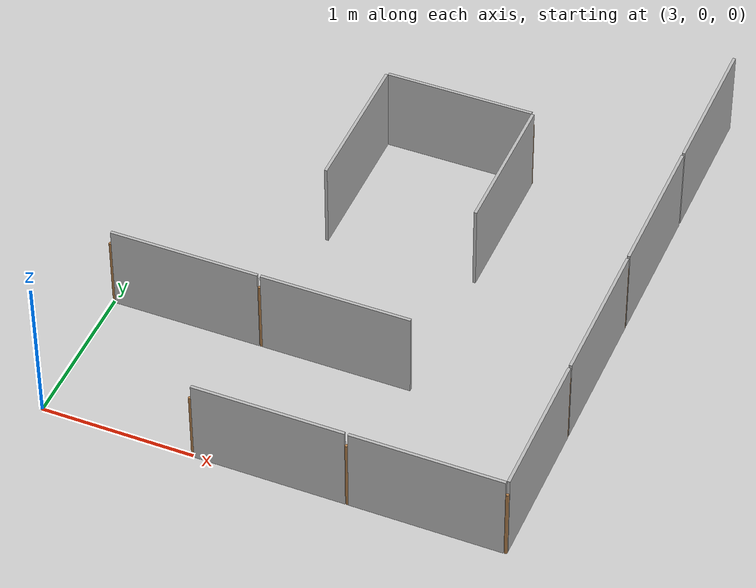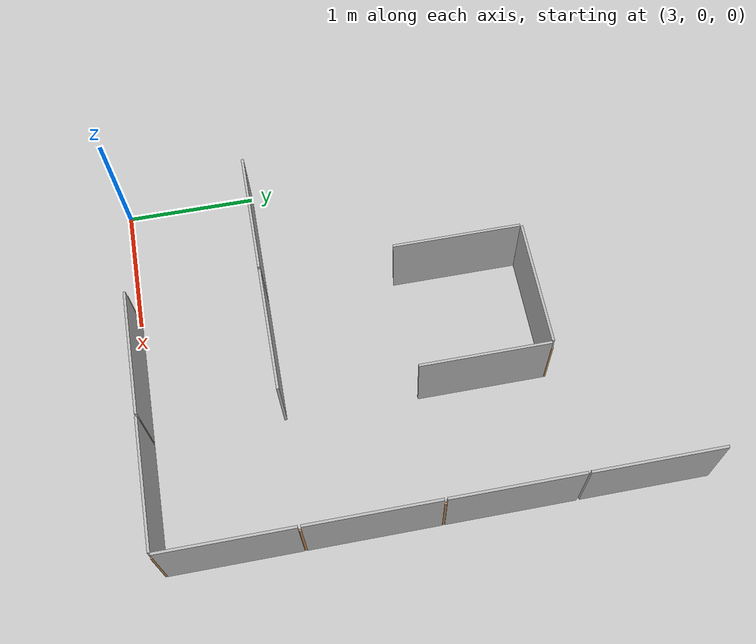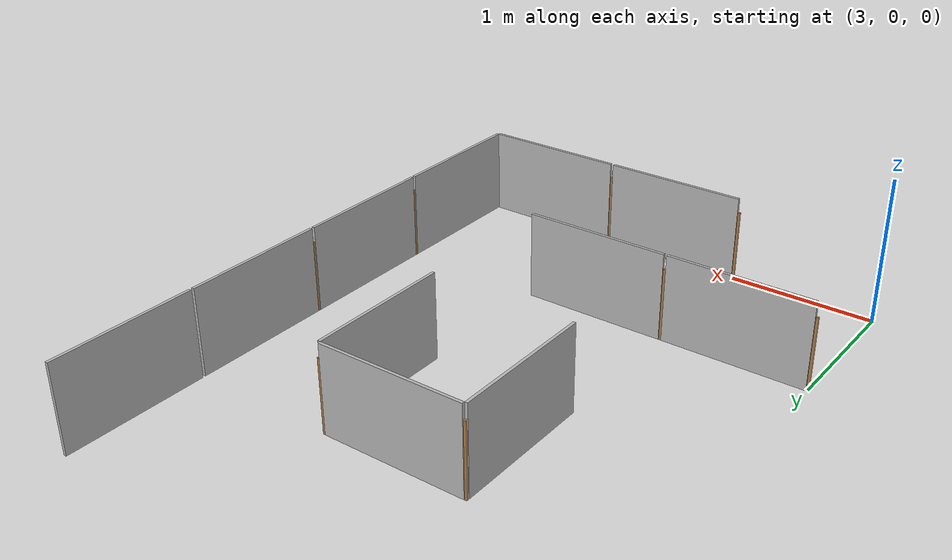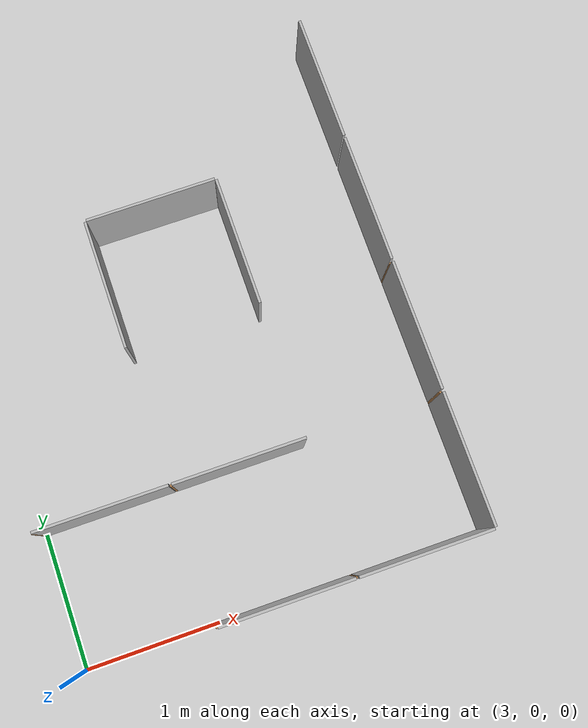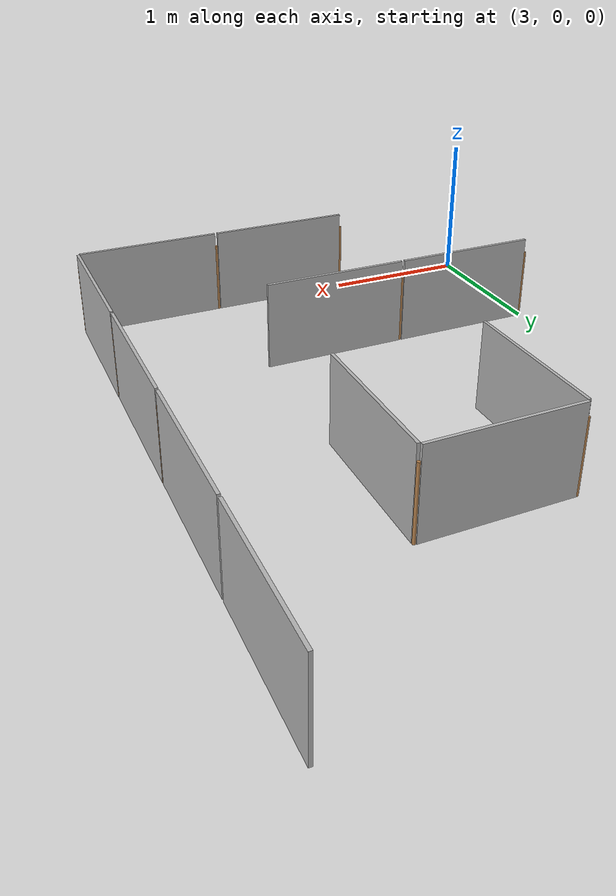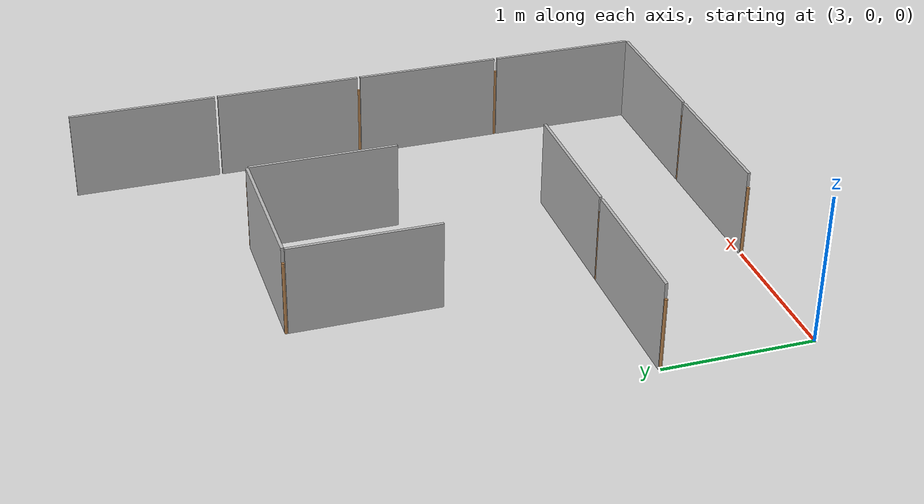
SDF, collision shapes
<sdf version="1.7">
 <model name="maze_3_6x6">
  <link name="plywood_panel_4_0_b::main">
   <pose>4 0 0 0 -0 1.571</pose>
   <visual name="visual">
    <pose>0.01 -0.01 0 3.14159 -1.57059 3.14159</pose>
    <geometry><mesh><scale>1 1 1</scale><uri>model://plywood_panel/meshes/plywood.dae</uri></mesh></geometry>
    <material><shader type="pixel"/></material>
   </visual>
   <collision name="collision">
    <pose>0 -0.5 0.3 -1.571 -0 -1.571</pose>
    <geometry><box><size>0.98 0.6 0.02</size></box></geometry>
    <surface>
     <friction>
      <ode><mu>1</mu><mu2>1</mu2><fdir1>0 0 0</fdir1><slip1>0</slip1><slip2>0</slip2></ode>
      <torsional>
       <coefficient>1</coefficient>
       <patch_radius>0</patch_radius>
       <surface_radius>0</surface_radius>
       <use_patch_radius>1</use_patch_radius>
       <ode><slip>0</slip></ode>
      </torsional>
     </friction>
     <bounce><restitution_coefficient>0</restitution_coefficient><threshold>1e+06</threshold></bounce>
     <contact>
      <collide_without_contact>0</collide_without_contact>
      <collide_without_contact_bitmask>1</collide_without_contact_bitmask>
      <collide_bitmask>1</collide_bitmask>
      <ode>
       <soft_cfm>0</soft_cfm>
       <soft_erp>0.2</soft_erp>
       <kp>1e+13</kp>
       <kd>1</kd>
       <max_vel>0.01</max_vel>
       <min_depth>0</min_depth>
      </ode>
      <bullet>
       <split_impulse>1</split_impulse>
       <split_impulse_penetration_threshold>-0.01</split_impulse_penetration_threshold>
       <soft_cfm>0</soft_cfm>
       <soft_erp>0.2</soft_erp>
       <kp>1e+13</kp>
       <kd>1</kd>
      </bullet>
     </contact>
    </surface>
   </collision>
  </link>
  <link name="plywood_panel_4_1_c::main">
   <pose>4 1 0 0 0 -1.5708</pose>
   <visual name="visual">
    <pose>0.01 -0.01 0 3.14159 -1.57059 3.14159</pose>
    <geometry><mesh><scale>1 1 1</scale><uri>model://plywood_panel/meshes/plywood.dae</uri></mesh></geometry>
    <material><shader type="pixel"/></material>
   </visual>
   <collision name="collision">
    <pose>0 -0.5 0.3 -1.571 -0 -1.571</pose>
    <geometry><box><size>0.98 0.6 0.02</size></box></geometry>
    <surface>
     <friction>
      <ode><mu>1</mu><mu2>1</mu2><fdir1>0 0 0</fdir1><slip1>0</slip1><slip2>0</slip2></ode>
      <torsional>
       <coefficient>1</coefficient>
       <patch_radius>0</patch_radius>
       <surface_radius>0</surface_radius>
       <use_patch_radius>1</use_patch_radius>
       <ode><slip>0</slip></ode>
      </torsional>
     </friction>
     <bounce><restitution_coefficient>0</restitution_coefficient><threshold>1e+06</threshold></bounce>
     <contact>
      <collide_without_contact>0</collide_without_contact>
      <collide_without_contact_bitmask>1</collide_without_contact_bitmask>
      <collide_bitmask>1</collide_bitmask>
      <ode>
       <soft_cfm>0</soft_cfm>
       <soft_erp>0.2</soft_erp>
       <kp>1e+13</kp>
       <kd>1</kd>
       <max_vel>0.01</max_vel>
       <min_depth>0</min_depth>
      </ode>
      <bullet>
       <split_impulse>1</split_impulse>
       <split_impulse_penetration_threshold>-0.01</split_impulse_penetration_threshold>
       <soft_cfm>0</soft_cfm>
       <soft_erp>0.2</soft_erp>
       <kp>1e+13</kp>
       <kd>1</kd>
      </bullet>
     </contact>
    </surface>
   </collision>
  </link>
  <link name="plywood_panel_4_3_a::main">
   <pose>4 3 0 0 -0 0</pose>
   <visual name="visual">
    <pose>0.01 -0.01 0 3.14159 -1.57059 3.14159</pose>
    <geometry><mesh><scale>1 1 1</scale><uri>model://plywood_panel/meshes/plywood.dae</uri></mesh></geometry>
    <material><shader type="pixel"/></material>
   </visual>
   <collision name="collision">
    <pose>0 -0.5 0.3 -1.571 -0 -1.571</pose>
    <geometry><box><size>0.98 0.6 0.02</size></box></geometry>
    <surface>
     <friction>
      <ode><mu>1</mu><mu2>1</mu2><fdir1>0 0 0</fdir1><slip1>0</slip1><slip2>0</slip2></ode>
      <torsional>
       <coefficient>1</coefficient>
       <patch_radius>0</patch_radius>
       <surface_radius>0</surface_radius>
       <use_patch_radius>1</use_patch_radius>
       <ode><slip>0</slip></ode>
      </torsional>
     </friction>
     <bounce><restitution_coefficient>0</restitution_coefficient><threshold>1e+06</threshold></bounce>
     <contact>
      <collide_without_contact>0</collide_without_contact>
      <collide_without_contact_bitmask>1</collide_without_contact_bitmask>
      <collide_bitmask>1</collide_bitmask>
      <ode>
       <soft_cfm>0</soft_cfm>
       <soft_erp>0.2</soft_erp>
       <kp>1e+13</kp>
       <kd>1</kd>
       <max_vel>0.01</max_vel>
       <min_depth>0</min_depth>
      </ode>
      <bullet>
       <split_impulse>1</split_impulse>
       <split_impulse_penetration_threshold>-0.01</split_impulse_penetration_threshold>
       <soft_cfm>0</soft_cfm>
       <soft_erp>0.2</soft_erp>
       <kp>1e+13</kp>
       <kd>1</kd>
      </bullet>
     </contact>
    </surface>
   </collision>
  </link>
  <link name="plywood_panel_5_0_b::main">
   <pose>5 0 0 0 -0 1.571</pose>
   <visual name="visual">
    <pose>0.01 -0.01 0 3.14159 -1.57059 3.14159</pose>
    <geometry><mesh><scale>1 1 1</scale><uri>model://plywood_panel/meshes/plywood.dae</uri></mesh></geometry>
    <material><shader type="pixel"/></material>
   </visual>
   <collision name="collision">
    <pose>0 -0.5 0.3 -1.571 -0 -1.571</pose>
    <geometry><box><size>0.98 0.6 0.02</size></box></geometry>
    <surface>
     <friction>
      <ode><mu>1</mu><mu2>1</mu2><fdir1>0 0 0</fdir1><slip1>0</slip1><slip2>0</slip2></ode>
      <torsional>
       <coefficient>1</coefficient>
       <patch_radius>0</patch_radius>
       <surface_radius>0</surface_radius>
       <use_patch_radius>1</use_patch_radius>
       <ode><slip>0</slip></ode>
      </torsional>
     </friction>
     <bounce><restitution_coefficient>0</restitution_coefficient><threshold>1e+06</threshold></bounce>
     <contact>
      <collide_without_contact>0</collide_without_contact>
      <collide_without_contact_bitmask>1</collide_without_contact_bitmask>
      <collide_bitmask>1</collide_bitmask>
      <ode>
       <soft_cfm>0</soft_cfm>
       <soft_erp>0.2</soft_erp>
       <kp>1e+13</kp>
       <kd>1</kd>
       <max_vel>0.01</max_vel>
       <min_depth>0</min_depth>
      </ode>
      <bullet>
       <split_impulse>1</split_impulse>
       <split_impulse_penetration_threshold>-0.01</split_impulse_penetration_threshold>
       <soft_cfm>0</soft_cfm>
       <soft_erp>0.2</soft_erp>
       <kp>1e+13</kp>
       <kd>1</kd>
      </bullet>
     </contact>
    </surface>
   </collision>
  </link>
  <link name="plywood_panel_5_1_c::main">
   <pose>5 1 0 0 0 -1.5708</pose>
   <visual name="visual">
    <pose>0.01 -0.01 0 3.14159 -1.57059 3.14159</pose>
    <geometry><mesh><scale>1 1 1</scale><uri>model://plywood_panel/meshes/plywood.dae</uri></mesh></geometry>
    <material><shader type="pixel"/></material>
   </visual>
   <collision name="collision">
    <pose>0 -0.5 0.3 -1.571 -0 -1.571</pose>
    <geometry><box><size>0.98 0.6 0.02</size></box></geometry>
    <surface>
     <friction>
      <ode><mu>1</mu><mu2>1</mu2><fdir1>0 0 0</fdir1><slip1>0</slip1><slip2>0</slip2></ode>
      <torsional>
       <coefficient>1</coefficient>
       <patch_radius>0</patch_radius>
       <surface_radius>0</surface_radius>
       <use_patch_radius>1</use_patch_radius>
       <ode><slip>0</slip></ode>
      </torsional>
     </friction>
     <bounce><restitution_coefficient>0</restitution_coefficient><threshold>1e+06</threshold></bounce>
     <contact>
      <collide_without_contact>0</collide_without_contact>
      <collide_without_contact_bitmask>1</collide_without_contact_bitmask>
      <collide_bitmask>1</collide_bitmask>
      <ode>
       <soft_cfm>0</soft_cfm>
       <soft_erp>0.2</soft_erp>
       <kp>1e+13</kp>
       <kd>1</kd>
       <max_vel>0.01</max_vel>
       <min_depth>0</min_depth>
      </ode>
      <bullet>
       <split_impulse>1</split_impulse>
       <split_impulse_penetration_threshold>-0.01</split_impulse_penetration_threshold>
       <soft_cfm>0</soft_cfm>
       <soft_erp>0.2</soft_erp>
       <kp>1e+13</kp>
       <kd>1</kd>
      </bullet>
     </contact>
    </surface>
   </collision>
  </link>
  <link name="plywood_panel_5_3_a::main">
   <pose>5 3 0 0 -0 0</pose>
   <visual name="visual">
    <pose>0.01 -0.01 0 3.14159 -1.57059 3.14159</pose>
    <geometry><mesh><scale>1 1 1</scale><uri>model://plywood_panel/meshes/plywood.dae</uri></mesh></geometry>
    <material><shader type="pixel"/></material>
   </visual>
   <collision name="collision">
    <pose>0 -0.5 0.3 -1.571 -0 -1.571</pose>
    <geometry><box><size>0.98 0.6 0.02</size></box></geometry>
    <surface>
     <friction>
      <ode><mu>1</mu><mu2>1</mu2><fdir1>0 0 0</fdir1><slip1>0</slip1><slip2>0</slip2></ode>
      <torsional>
       <coefficient>1</coefficient>
       <patch_radius>0</patch_radius>
       <surface_radius>0</surface_radius>
       <use_patch_radius>1</use_patch_radius>
       <ode><slip>0</slip></ode>
      </torsional>
     </friction>
     <bounce><restitution_coefficient>0</restitution_coefficient><threshold>1e+06</threshold></bounce>
     <contact>
      <collide_without_contact>0</collide_without_contact>
      <collide_without_contact_bitmask>1</collide_without_contact_bitmask>
      <collide_bitmask>1</collide_bitmask>
      <ode>
       <soft_cfm>0</soft_cfm>
       <soft_erp>0.2</soft_erp>
       <kp>1e+13</kp>
       <kd>1</kd>
       <max_vel>0.01</max_vel>
       <min_depth>0</min_depth>
      </ode>
      <bullet>
       <split_impulse>1</split_impulse>
       <split_impulse_penetration_threshold>-0.01</split_impulse_penetration_threshold>
       <soft_cfm>0</soft_cfm>
       <soft_erp>0.2</soft_erp>
       <kp>1e+13</kp>
       <kd>1</kd>
      </bullet>
     </contact>
    </surface>
   </collision>
  </link>
  <link name="plywood_panel_5_3_c::main">
   <pose>5 3 0 0 0 -1.5708</pose>
   <visual name="visual">
    <pose>0.01 -0.01 0 3.14159 -1.57059 3.14159</pose>
    <geometry><mesh><scale>1 1 1</scale><uri>model://plywood_panel/meshes/plywood.dae</uri></mesh></geometry>
    <material><shader type="pixel"/></material>
   </visual>
   <collision name="collision">
    <pose>0 -0.5 0.3 -1.571 -0 -1.571</pose>
    <geometry><box><size>0.98 0.6 0.02</size></box></geometry>
    <surface>
     <friction>
      <ode><mu>1</mu><mu2>1</mu2><fdir1>0 0 0</fdir1><slip1>0</slip1><slip2>0</slip2></ode>
      <torsional>
       <coefficient>1</coefficient>
       <patch_radius>0</patch_radius>
       <surface_radius>0</surface_radius>
       <use_patch_radius>1</use_patch_radius>
       <ode><slip>0</slip></ode>
      </torsional>
     </friction>
     <bounce><restitution_coefficient>0</restitution_coefficient><threshold>1e+06</threshold></bounce>
     <contact>
      <collide_without_contact>0</collide_without_contact>
      <collide_without_contact_bitmask>1</collide_without_contact_bitmask>
      <collide_bitmask>1</collide_bitmask>
      <ode>
       <soft_cfm>0</soft_cfm>
       <soft_erp>0.2</soft_erp>
       <kp>1e+13</kp>
       <kd>1</kd>
       <max_vel>0.01</max_vel>
       <min_depth>0</min_depth>
      </ode>
      <bullet>
       <split_impulse>1</split_impulse>
       <split_impulse_penetration_threshold>-0.01</split_impulse_penetration_threshold>
       <soft_cfm>0</soft_cfm>
       <soft_erp>0.2</soft_erp>
       <kp>1e+13</kp>
       <kd>1</kd>
      </bullet>
     </contact>
    </surface>
   </collision>
  </link>
  <link name="plywood_panel_6_0_a::main">
   <pose>6 0 0 0 -0 3.14159</pose>
   <visual name="visual">
    <pose>0.01 -0.01 0 3.14159 -1.57059 3.14159</pose>
    <geometry><mesh><scale>1 1 1</scale><uri>model://plywood_panel/meshes/plywood.dae</uri></mesh></geometry>
    <material><shader type="pixel"/></material>
   </visual>
   <collision name="collision">
    <pose>0 -0.5 0.3 -1.571 -0 -1.571</pose>
    <geometry><box><size>0.98 0.6 0.02</size></box></geometry>
    <surface>
     <friction>
      <ode><mu>1</mu><mu2>1</mu2><fdir1>0 0 0</fdir1><slip1>0</slip1><slip2>0</slip2></ode>
      <torsional>
       <coefficient>1</coefficient>
       <patch_radius>0</patch_radius>
       <surface_radius>0</surface_radius>
       <use_patch_radius>1</use_patch_radius>
       <ode><slip>0</slip></ode>
      </torsional>
     </friction>
     <bounce><restitution_coefficient>0</restitution_coefficient><threshold>1e+06</threshold></bounce>
     <contact>
      <collide_without_contact>0</collide_without_contact>
      <collide_without_contact_bitmask>1</collide_without_contact_bitmask>
      <collide_bitmask>1</collide_bitmask>
      <ode>
       <soft_cfm>0</soft_cfm>
       <soft_erp>0.2</soft_erp>
       <kp>1e+13</kp>
       <kd>1</kd>
       <max_vel>0.01</max_vel>
       <min_depth>0</min_depth>
      </ode>
      <bullet>
       <split_impulse>1</split_impulse>
       <split_impulse_penetration_threshold>-0.01</split_impulse_penetration_threshold>
       <soft_cfm>0</soft_cfm>
       <soft_erp>0.2</soft_erp>
       <kp>1e+13</kp>
       <kd>1</kd>
      </bullet>
     </contact>
    </surface>
   </collision>
  </link>
  <link name="plywood_panel_6_1_a::main">
   <pose>6 1 0 0 -0 3.14159</pose>
   <visual name="visual">
    <pose>0.01 -0.01 0 3.14159 -1.57059 3.14159</pose>
    <geometry><mesh><scale>1 1 1</scale><uri>model://plywood_panel/meshes/plywood.dae</uri></mesh></geometry>
    <material><shader type="pixel"/></material>
   </visual>
   <collision name="collision">
    <pose>0 -0.5 0.3 -1.571 -0 -1.571</pose>
    <geometry><box><size>0.98 0.6 0.02</size></box></geometry>
    <surface>
     <friction>
      <ode><mu>1</mu><mu2>1</mu2><fdir1>0 0 0</fdir1><slip1>0</slip1><slip2>0</slip2></ode>
      <torsional>
       <coefficient>1</coefficient>
       <patch_radius>0</patch_radius>
       <surface_radius>0</surface_radius>
       <use_patch_radius>1</use_patch_radius>
       <ode><slip>0</slip></ode>
      </torsional>
     </friction>
     <bounce><restitution_coefficient>0</restitution_coefficient><threshold>1e+06</threshold></bounce>
     <contact>
      <collide_without_contact>0</collide_without_contact>
      <collide_without_contact_bitmask>1</collide_without_contact_bitmask>
      <collide_bitmask>1</collide_bitmask>
      <ode>
       <soft_cfm>0</soft_cfm>
       <soft_erp>0.2</soft_erp>
       <kp>1e+13</kp>
       <kd>1</kd>
       <max_vel>0.01</max_vel>
       <min_depth>0</min_depth>
      </ode>
      <bullet>
       <split_impulse>1</split_impulse>
       <split_impulse_penetration_threshold>-0.01</split_impulse_penetration_threshold>
       <soft_cfm>0</soft_cfm>
       <soft_erp>0.2</soft_erp>
       <kp>1e+13</kp>
       <kd>1</kd>
      </bullet>
     </contact>
    </surface>
   </collision>
  </link>
  <link name="plywood_panel_6_2_a::main">
   <pose>6 2 0 0 -0 3.14159</pose>
   <visual name="visual">
    <pose>0.01 -0.01 0 3.14159 -1.57059 3.14159</pose>
    <geometry><mesh><scale>1 1 1</scale><uri>model://plywood_panel/meshes/plywood.dae</uri></mesh></geometry>
    <material><shader type="pixel"/></material>
   </visual>
   <collision name="collision">
    <pose>0 -0.5 0.3 -1.571 -0 -1.571</pose>
    <geometry><box><size>0.98 0.6 0.02</size></box></geometry>
    <surface>
     <friction>
      <ode><mu>1</mu><mu2>1</mu2><fdir1>0 0 0</fdir1><slip1>0</slip1><slip2>0</slip2></ode>
      <torsional>
       <coefficient>1</coefficient>
       <patch_radius>0</patch_radius>
       <surface_radius>0</surface_radius>
       <use_patch_radius>1</use_patch_radius>
       <ode><slip>0</slip></ode>
      </torsional>
     </friction>
     <bounce><restitution_coefficient>0</restitution_coefficient><threshold>1e+06</threshold></bounce>
     <contact>
      <collide_without_contact>0</collide_without_contact>
      <collide_without_contact_bitmask>1</collide_without_contact_bitmask>
      <collide_bitmask>1</collide_bitmask>
      <ode>
       <soft_cfm>0</soft_cfm>
       <soft_erp>0.2</soft_erp>
       <kp>1e+13</kp>
       <kd>1</kd>
       <max_vel>0.01</max_vel>
       <min_depth>0</min_depth>
      </ode>
      <bullet>
       <split_impulse>1</split_impulse>
       <split_impulse_penetration_threshold>-0.01</split_impulse_penetration_threshold>
       <soft_cfm>0</soft_cfm>
       <soft_erp>0.2</soft_erp>
       <kp>1e+13</kp>
       <kd>1</kd>
      </bullet>
     </contact>
    </surface>
   </collision>
  </link>
  <link name="plywood_panel_6_3_a::main">
   <pose>6 3 0 0 -0 3.14159</pose>
   <visual name="visual">
    <pose>0.01 -0.01 0 3.14159 -1.57059 3.14159</pose>
    <geometry><mesh><scale>1 1 1</scale><uri>model://plywood_panel/meshes/plywood.dae</uri></mesh></geometry>
    <material><shader type="pixel"/></material>
   </visual>
   <collision name="collision">
    <pose>0 -0.5 0.3 -1.571 -0 -1.571</pose>
    <geometry><box><size>0.98 0.6 0.02</size></box></geometry>
    <surface>
     <friction>
      <ode><mu>1</mu><mu2>1</mu2><fdir1>0 0 0</fdir1><slip1>0</slip1><slip2>0</slip2></ode>
      <torsional>
       <coefficient>1</coefficient>
       <patch_radius>0</patch_radius>
       <surface_radius>0</surface_radius>
       <use_patch_radius>1</use_patch_radius>
       <ode><slip>0</slip></ode>
      </torsional>
     </friction>
     <bounce><restitution_coefficient>0</restitution_coefficient><threshold>1e+06</threshold></bounce>
     <contact>
      <collide_without_contact>0</collide_without_contact>
      <collide_without_contact_bitmask>1</collide_without_contact_bitmask>
      <collide_bitmask>1</collide_bitmask>
      <ode>
       <soft_cfm>0</soft_cfm>
       <soft_erp>0.2</soft_erp>
       <kp>1e+13</kp>
       <kd>1</kd>
       <max_vel>0.01</max_vel>
       <min_depth>0</min_depth>
      </ode>
      <bullet>
       <split_impulse>1</split_impulse>
       <split_impulse_penetration_threshold>-0.01</split_impulse_penetration_threshold>
       <soft_cfm>0</soft_cfm>
       <soft_erp>0.2</soft_erp>
       <kp>1e+13</kp>
       <kd>1</kd>
      </bullet>
     </contact>
    </surface>
   </collision>
  </link>
  <link name="wooden_joint_3_0_b::link_0">
   <pose>3 0 0.25 0 -0 0</pose>
   <inertial>
    <mass>0.00215981</mass>
    <inertia>
     <ixx>0.00018028</ixx>
     <ixy>0</ixy>
     <ixz>0</ixz>
     <iyy>0.00018028</iyy>
     <iyz>0</iyz>
     <izz>5.8e-07</izz>
    </inertia>
   </inertial>
   <visual name="visual">
    <geometry><cylinder><radius>0.01</radius><length>0.5</length></cylinder></geometry>
    <material>
     <lighting>1</lighting>
     <script><uri>file://media/materials/scripts/gazebo.material</uri><name>Gazebo/Wood</name></script>
     <shader type="pixel"><normal_map>__default__</normal_map></shader>
     <ambient>0.3 0.3 0.3 1</ambient>
     <diffuse>0.7 0.7 0.7 1</diffuse>
     <specular>0.01 0.01 0.01 1</specular>
     <emissive>0 0 0 1</emissive>
    </material>
   </visual>
   <collision name="collision">
    <geometry><cylinder><radius>0.01</radius><length>0.5</length></cylinder></geometry>
    <surface>
     <friction>
      <ode><mu>1</mu><mu2>1</mu2><fdir1>0 0 0</fdir1><slip1>0</slip1><slip2>0</slip2></ode>
      <torsional>
       <coefficient>1</coefficient>
       <patch_radius>0</patch_radius>
       <surface_radius>0</surface_radius>
       <use_patch_radius>1</use_patch_radius>
       <ode><slip>0</slip></ode>
      </torsional>
     </friction>
     <bounce><restitution_coefficient>0</restitution_coefficient><threshold>1e+06</threshold></bounce>
     <contact>
      <collide_without_contact>0</collide_without_contact>
      <collide_without_contact_bitmask>1</collide_without_contact_bitmask>
      <collide_bitmask>1</collide_bitmask>
      <ode>
       <soft_cfm>0</soft_cfm>
       <soft_erp>0.2</soft_erp>
       <kp>1e+13</kp>
       <kd>1</kd>
       <max_vel>0.01</max_vel>
       <min_depth>0</min_depth>
      </ode>
      <bullet>
       <split_impulse>1</split_impulse>
       <split_impulse_penetration_threshold>-0.01</split_impulse_penetration_threshold>
       <soft_cfm>0</soft_cfm>
       <soft_erp>0.2</soft_erp>
       <kp>1e+13</kp>
       <kd>1</kd>
      </bullet>
     </contact>
    </surface>
   </collision>
  </link>
  <link name="wooden_joint_3_1::link_0">
   <pose>3 1 0.25 0 -0 0</pose>
   <inertial>
    <mass>0.00215981</mass>
    <inertia>
     <ixx>0.00018028</ixx>
     <ixy>0</ixy>
     <ixz>0</ixz>
     <iyy>0.00018028</iyy>
     <iyz>0</iyz>
     <izz>5.8e-07</izz>
    </inertia>
   </inertial>
   <visual name="visual">
    <geometry><cylinder><radius>0.01</radius><length>0.5</length></cylinder></geometry>
    <material>
     <lighting>1</lighting>
     <script><uri>file://media/materials/scripts/gazebo.material</uri><name>Gazebo/Wood</name></script>
     <shader type="pixel"><normal_map>__default__</normal_map></shader>
     <ambient>0.3 0.3 0.3 1</ambient>
     <diffuse>0.7 0.7 0.7 1</diffuse>
     <specular>0.01 0.01 0.01 1</specular>
     <emissive>0 0 0 1</emissive>
    </material>
   </visual>
   <collision name="collision">
    <geometry><cylinder><radius>0.01</radius><length>0.5</length></cylinder></geometry>
    <surface>
     <friction>
      <ode><mu>1</mu><mu2>1</mu2><fdir1>0 0 0</fdir1><slip1>0</slip1><slip2>0</slip2></ode>
      <torsional>
       <coefficient>1</coefficient>
       <patch_radius>0</patch_radius>
       <surface_radius>0</surface_radius>
       <use_patch_radius>1</use_patch_radius>
       <ode><slip>0</slip></ode>
      </torsional>
     </friction>
     <bounce><restitution_coefficient>0</restitution_coefficient><threshold>1e+06</threshold></bounce>
     <contact>
      <collide_without_contact>0</collide_without_contact>
      <collide_without_contact_bitmask>1</collide_without_contact_bitmask>
      <collide_bitmask>1</collide_bitmask>
      <ode>
       <soft_cfm>0</soft_cfm>
       <soft_erp>0.2</soft_erp>
       <kp>1e+13</kp>
       <kd>1</kd>
       <max_vel>0.01</max_vel>
       <min_depth>0</min_depth>
      </ode>
      <bullet>
       <split_impulse>1</split_impulse>
       <split_impulse_penetration_threshold>-0.01</split_impulse_penetration_threshold>
       <soft_cfm>0</soft_cfm>
       <soft_erp>0.2</soft_erp>
       <kp>1e+13</kp>
       <kd>1</kd>
      </bullet>
     </contact>
    </surface>
   </collision>
  </link>
  <link name="wooden_joint_4_0_b::link_0">
   <pose>4 0 0.25 0 -0 0</pose>
   <inertial>
    <mass>0.00215981</mass>
    <inertia>
     <ixx>0.00018028</ixx>
     <ixy>0</ixy>
     <ixz>0</ixz>
     <iyy>0.00018028</iyy>
     <iyz>0</iyz>
     <izz>5.8e-07</izz>
    </inertia>
   </inertial>
   <visual name="visual">
    <geometry><cylinder><radius>0.01</radius><length>0.5</length></cylinder></geometry>
    <material>
     <lighting>1</lighting>
     <script><uri>file://media/materials/scripts/gazebo.material</uri><name>Gazebo/Wood</name></script>
     <shader type="pixel"><normal_map>__default__</normal_map></shader>
     <ambient>0.3 0.3 0.3 1</ambient>
     <diffuse>0.7 0.7 0.7 1</diffuse>
     <specular>0.01 0.01 0.01 1</specular>
     <emissive>0 0 0 1</emissive>
    </material>
   </visual>
   <collision name="collision">
    <geometry><cylinder><radius>0.01</radius><length>0.5</length></cylinder></geometry>
    <surface>
     <friction>
      <ode><mu>1</mu><mu2>1</mu2><fdir1>0 0 0</fdir1><slip1>0</slip1><slip2>0</slip2></ode>
      <torsional>
       <coefficient>1</coefficient>
       <patch_radius>0</patch_radius>
       <surface_radius>0</surface_radius>
       <use_patch_radius>1</use_patch_radius>
       <ode><slip>0</slip></ode>
      </torsional>
     </friction>
     <bounce><restitution_coefficient>0</restitution_coefficient><threshold>1e+06</threshold></bounce>
     <contact>
      <collide_without_contact>0</collide_without_contact>
      <collide_without_contact_bitmask>1</collide_without_contact_bitmask>
      <collide_bitmask>1</collide_bitmask>
      <ode>
       <soft_cfm>0</soft_cfm>
       <soft_erp>0.2</soft_erp>
       <kp>1e+13</kp>
       <kd>1</kd>
       <max_vel>0.01</max_vel>
       <min_depth>0</min_depth>
      </ode>
      <bullet>
       <split_impulse>1</split_impulse>
       <split_impulse_penetration_threshold>-0.01</split_impulse_penetration_threshold>
       <soft_cfm>0</soft_cfm>
       <soft_erp>0.2</soft_erp>
       <kp>1e+13</kp>
       <kd>1</kd>
      </bullet>
     </contact>
    </surface>
   </collision>
  </link>
  <link name="wooden_joint_4_1::link_0">
   <pose>4 1 0.25 0 -0 0</pose>
   <inertial>
    <mass>0.00215981</mass>
    <inertia>
     <ixx>0.00018028</ixx>
     <ixy>0</ixy>
     <ixz>0</ixz>
     <iyy>0.00018028</iyy>
     <iyz>0</iyz>
     <izz>5.8e-07</izz>
    </inertia>
   </inertial>
   <visual name="visual">
    <geometry><cylinder><radius>0.01</radius><length>0.5</length></cylinder></geometry>
    <material>
     <lighting>1</lighting>
     <script><uri>file://media/materials/scripts/gazebo.material</uri><name>Gazebo/Wood</name></script>
     <shader type="pixel"><normal_map>__default__</normal_map></shader>
     <ambient>0.3 0.3 0.3 1</ambient>
     <diffuse>0.7 0.7 0.7 1</diffuse>
     <specular>0.01 0.01 0.01 1</specular>
     <emissive>0 0 0 1</emissive>
    </material>
   </visual>
   <collision name="collision">
    <geometry><cylinder><radius>0.01</radius><length>0.5</length></cylinder></geometry>
    <surface>
     <friction>
      <ode><mu>1</mu><mu2>1</mu2><fdir1>0 0 0</fdir1><slip1>0</slip1><slip2>0</slip2></ode>
      <torsional>
       <coefficient>1</coefficient>
       <patch_radius>0</patch_radius>
       <surface_radius>0</surface_radius>
       <use_patch_radius>1</use_patch_radius>
       <ode><slip>0</slip></ode>
      </torsional>
     </friction>
     <bounce><restitution_coefficient>0</restitution_coefficient><threshold>1e+06</threshold></bounce>
     <contact>
      <collide_without_contact>0</collide_without_contact>
      <collide_without_contact_bitmask>1</collide_without_contact_bitmask>
      <collide_bitmask>1</collide_bitmask>
      <ode>
       <soft_cfm>0</soft_cfm>
       <soft_erp>0.2</soft_erp>
       <kp>1e+13</kp>
       <kd>1</kd>
       <max_vel>0.01</max_vel>
       <min_depth>0</min_depth>
      </ode>
      <bullet>
       <split_impulse>1</split_impulse>
       <split_impulse_penetration_threshold>-0.01</split_impulse_penetration_threshold>
       <soft_cfm>0</soft_cfm>
       <soft_erp>0.2</soft_erp>
       <kp>1e+13</kp>
       <kd>1</kd>
      </bullet>
     </contact>
    </surface>
   </collision>
  </link>
  <link name="wooden_joint_4_3::link_0">
   <pose>4 3 0.25 0 -0 0</pose>
   <inertial>
    <mass>0.00215981</mass>
    <inertia>
     <ixx>0.00018028</ixx>
     <ixy>0</ixy>
     <ixz>0</ixz>
     <iyy>0.00018028</iyy>
     <iyz>0</iyz>
     <izz>5.8e-07</izz>
    </inertia>
   </inertial>
   <visual name="visual">
    <geometry><cylinder><radius>0.01</radius><length>0.5</length></cylinder></geometry>
    <material>
     <lighting>1</lighting>
     <script><uri>file://media/materials/scripts/gazebo.material</uri><name>Gazebo/Wood</name></script>
     <shader type="pixel"><normal_map>__default__</normal_map></shader>
     <ambient>0.3 0.3 0.3 1</ambient>
     <diffuse>0.7 0.7 0.7 1</diffuse>
     <specular>0.01 0.01 0.01 1</specular>
     <emissive>0 0 0 1</emissive>
    </material>
   </visual>
   <collision name="collision">
    <geometry><cylinder><radius>0.01</radius><length>0.5</length></cylinder></geometry>
    <surface>
     <friction>
      <ode><mu>1</mu><mu2>1</mu2><fdir1>0 0 0</fdir1><slip1>0</slip1><slip2>0</slip2></ode>
      <torsional>
       <coefficient>1</coefficient>
       <patch_radius>0</patch_radius>
       <surface_radius>0</surface_radius>
       <use_patch_radius>1</use_patch_radius>
       <ode><slip>0</slip></ode>
      </torsional>
     </friction>
     <bounce><restitution_coefficient>0</restitution_coefficient><threshold>1e+06</threshold></bounce>
     <contact>
      <collide_without_contact>0</collide_without_contact>
      <collide_without_contact_bitmask>1</collide_without_contact_bitmask>
      <collide_bitmask>1</collide_bitmask>
      <ode>
       <soft_cfm>0</soft_cfm>
       <soft_erp>0.2</soft_erp>
       <kp>1e+13</kp>
       <kd>1</kd>
       <max_vel>0.01</max_vel>
       <min_depth>0</min_depth>
      </ode>
      <bullet>
       <split_impulse>1</split_impulse>
       <split_impulse_penetration_threshold>-0.01</split_impulse_penetration_threshold>
       <soft_cfm>0</soft_cfm>
       <soft_erp>0.2</soft_erp>
       <kp>1e+13</kp>
       <kd>1</kd>
      </bullet>
     </contact>
    </surface>
   </collision>
  </link>
  <link name="wooden_joint_5_0_b::link_0">
   <pose>5 0 0.25 0 -0 0</pose>
   <inertial>
    <mass>0.00215981</mass>
    <inertia>
     <ixx>0.00018028</ixx>
     <ixy>0</ixy>
     <ixz>0</ixz>
     <iyy>0.00018028</iyy>
     <iyz>0</iyz>
     <izz>5.8e-07</izz>
    </inertia>
   </inertial>
   <visual name="visual">
    <geometry><cylinder><radius>0.01</radius><length>0.5</length></cylinder></geometry>
    <material>
     <lighting>1</lighting>
     <script><uri>file://media/materials/scripts/gazebo.material</uri><name>Gazebo/Wood</name></script>
     <shader type="pixel"><normal_map>__default__</normal_map></shader>
     <ambient>0.3 0.3 0.3 1</ambient>
     <diffuse>0.7 0.7 0.7 1</diffuse>
     <specular>0.01 0.01 0.01 1</specular>
     <emissive>0 0 0 1</emissive>
    </material>
   </visual>
   <collision name="collision">
    <geometry><cylinder><radius>0.01</radius><length>0.5</length></cylinder></geometry>
    <surface>
     <friction>
      <ode><mu>1</mu><mu2>1</mu2><fdir1>0 0 0</fdir1><slip1>0</slip1><slip2>0</slip2></ode>
      <torsional>
       <coefficient>1</coefficient>
       <patch_radius>0</patch_radius>
       <surface_radius>0</surface_radius>
       <use_patch_radius>1</use_patch_radius>
       <ode><slip>0</slip></ode>
      </torsional>
     </friction>
     <bounce><restitution_coefficient>0</restitution_coefficient><threshold>1e+06</threshold></bounce>
     <contact>
      <collide_without_contact>0</collide_without_contact>
      <collide_without_contact_bitmask>1</collide_without_contact_bitmask>
      <collide_bitmask>1</collide_bitmask>
      <ode>
       <soft_cfm>0</soft_cfm>
       <soft_erp>0.2</soft_erp>
       <kp>1e+13</kp>
       <kd>1</kd>
       <max_vel>0.01</max_vel>
       <min_depth>0</min_depth>
      </ode>
      <bullet>
       <split_impulse>1</split_impulse>
       <split_impulse_penetration_threshold>-0.01</split_impulse_penetration_threshold>
       <soft_cfm>0</soft_cfm>
       <soft_erp>0.2</soft_erp>
       <kp>1e+13</kp>
       <kd>1</kd>
      </bullet>
     </contact>
    </surface>
   </collision>
  </link>
  <link name="wooden_joint_5_3::link_0">
   <pose>5 3 0.25 0 -0 0</pose>
   <inertial>
    <mass>0.00215981</mass>
    <inertia>
     <ixx>0.00018028</ixx>
     <ixy>0</ixy>
     <ixz>0</ixz>
     <iyy>0.00018028</iyy>
     <iyz>0</iyz>
     <izz>5.8e-07</izz>
    </inertia>
   </inertial>
   <visual name="visual">
    <geometry><cylinder><radius>0.01</radius><length>0.5</length></cylinder></geometry>
    <material>
     <lighting>1</lighting>
     <script><uri>file://media/materials/scripts/gazebo.material</uri><name>Gazebo/Wood</name></script>
     <shader type="pixel"><normal_map>__default__</normal_map></shader>
     <ambient>0.3 0.3 0.3 1</ambient>
     <diffuse>0.7 0.7 0.7 1</diffuse>
     <specular>0.01 0.01 0.01 1</specular>
     <emissive>0 0 0 1</emissive>
    </material>
   </visual>
   <collision name="collision">
    <geometry><cylinder><radius>0.01</radius><length>0.5</length></cylinder></geometry>
    <surface>
     <friction>
      <ode><mu>1</mu><mu2>1</mu2><fdir1>0 0 0</fdir1><slip1>0</slip1><slip2>0</slip2></ode>
      <torsional>
       <coefficient>1</coefficient>
       <patch_radius>0</patch_radius>
       <surface_radius>0</surface_radius>
       <use_patch_radius>1</use_patch_radius>
       <ode><slip>0</slip></ode>
      </torsional>
     </friction>
     <bounce><restitution_coefficient>0</restitution_coefficient><threshold>1e+06</threshold></bounce>
     <contact>
      <collide_without_contact>0</collide_without_contact>
      <collide_without_contact_bitmask>1</collide_without_contact_bitmask>
      <collide_bitmask>1</collide_bitmask>
      <ode>
       <soft_cfm>0</soft_cfm>
       <soft_erp>0.2</soft_erp>
       <kp>1e+13</kp>
       <kd>1</kd>
       <max_vel>0.01</max_vel>
       <min_depth>0</min_depth>
      </ode>
      <bullet>
       <split_impulse>1</split_impulse>
       <split_impulse_penetration_threshold>-0.01</split_impulse_penetration_threshold>
       <soft_cfm>0</soft_cfm>
       <soft_erp>0.2</soft_erp>
       <kp>1e+13</kp>
       <kd>1</kd>
      </bullet>
     </contact>
    </surface>
   </collision>
  </link>
  <link name="wooden_joint_6_0_a::link_0">
   <pose>6 0 0.25 0 -0 0</pose>
   <inertial>
    <mass>0.00215981</mass>
    <inertia>
     <ixx>0.00018028</ixx>
     <ixy>0</ixy>
     <ixz>0</ixz>
     <iyy>0.00018028</iyy>
     <iyz>0</iyz>
     <izz>5.8e-07</izz>
    </inertia>
   </inertial>
   <visual name="visual">
    <geometry><cylinder><radius>0.01</radius><length>0.5</length></cylinder></geometry>
    <material>
     <lighting>1</lighting>
     <script><uri>file://media/materials/scripts/gazebo.material</uri><name>Gazebo/Wood</name></script>
     <shader type="pixel"><normal_map>__default__</normal_map></shader>
     <ambient>0.3 0.3 0.3 1</ambient>
     <diffuse>0.7 0.7 0.7 1</diffuse>
     <specular>0.01 0.01 0.01 1</specular>
     <emissive>0 0 0 1</emissive>
    </material>
   </visual>
   <collision name="collision">
    <geometry><cylinder><radius>0.01</radius><length>0.5</length></cylinder></geometry>
    <surface>
     <friction>
      <ode><mu>1</mu><mu2>1</mu2><fdir1>0 0 0</fdir1><slip1>0</slip1><slip2>0</slip2></ode>
      <torsional>
       <coefficient>1</coefficient>
       <patch_radius>0</patch_radius>
       <surface_radius>0</surface_radius>
       <use_patch_radius>1</use_patch_radius>
       <ode><slip>0</slip></ode>
      </torsional>
     </friction>
     <bounce><restitution_coefficient>0</restitution_coefficient><threshold>1e+06</threshold></bounce>
     <contact>
      <collide_without_contact>0</collide_without_contact>
      <collide_without_contact_bitmask>1</collide_without_contact_bitmask>
      <collide_bitmask>1</collide_bitmask>
      <ode>
       <soft_cfm>0</soft_cfm>
       <soft_erp>0.2</soft_erp>
       <kp>1e+13</kp>
       <kd>1</kd>
       <max_vel>0.01</max_vel>
       <min_depth>0</min_depth>
      </ode>
      <bullet>
       <split_impulse>1</split_impulse>
       <split_impulse_penetration_threshold>-0.01</split_impulse_penetration_threshold>
       <soft_cfm>0</soft_cfm>
       <soft_erp>0.2</soft_erp>
       <kp>1e+13</kp>
       <kd>1</kd>
      </bullet>
     </contact>
    </surface>
   </collision>
  </link>
  <link name="wooden_joint_6_1_a::link_0">
   <pose>6 1 0.25 0 -0 0</pose>
   <inertial>
    <mass>0.00215981</mass>
    <inertia>
     <ixx>0.00018028</ixx>
     <ixy>0</ixy>
     <ixz>0</ixz>
     <iyy>0.00018028</iyy>
     <iyz>0</iyz>
     <izz>5.8e-07</izz>
    </inertia>
   </inertial>
   <visual name="visual">
    <geometry><cylinder><radius>0.01</radius><length>0.5</length></cylinder></geometry>
    <material>
     <lighting>1</lighting>
     <script><uri>file://media/materials/scripts/gazebo.material</uri><name>Gazebo/Wood</name></script>
     <shader type="pixel"><normal_map>__default__</normal_map></shader>
     <ambient>0.3 0.3 0.3 1</ambient>
     <diffuse>0.7 0.7 0.7 1</diffuse>
     <specular>0.01 0.01 0.01 1</specular>
     <emissive>0 0 0 1</emissive>
    </material>
   </visual>
   <collision name="collision">
    <geometry><cylinder><radius>0.01</radius><length>0.5</length></cylinder></geometry>
    <surface>
     <friction>
      <ode><mu>1</mu><mu2>1</mu2><fdir1>0 0 0</fdir1><slip1>0</slip1><slip2>0</slip2></ode>
      <torsional>
       <coefficient>1</coefficient>
       <patch_radius>0</patch_radius>
       <surface_radius>0</surface_radius>
       <use_patch_radius>1</use_patch_radius>
       <ode><slip>0</slip></ode>
      </torsional>
     </friction>
     <bounce><restitution_coefficient>0</restitution_coefficient><threshold>1e+06</threshold></bounce>
     <contact>
      <collide_without_contact>0</collide_without_contact>
      <collide_without_contact_bitmask>1</collide_without_contact_bitmask>
      <collide_bitmask>1</collide_bitmask>
      <ode>
       <soft_cfm>0</soft_cfm>
       <soft_erp>0.2</soft_erp>
       <kp>1e+13</kp>
       <kd>1</kd>
       <max_vel>0.01</max_vel>
       <min_depth>0</min_depth>
      </ode>
      <bullet>
       <split_impulse>1</split_impulse>
       <split_impulse_penetration_threshold>-0.01</split_impulse_penetration_threshold>
       <soft_cfm>0</soft_cfm>
       <soft_erp>0.2</soft_erp>
       <kp>1e+13</kp>
       <kd>1</kd>
      </bullet>
     </contact>
    </surface>
   </collision>
  </link>
  <link name="wooden_joint_6_2_a::link_0">
   <pose>6 2 0.25 0 -0 0</pose>
   <inertial>
    <mass>0.00215981</mass>
    <inertia>
     <ixx>0.00018028</ixx>
     <ixy>0</ixy>
     <ixz>0</ixz>
     <iyy>0.00018028</iyy>
     <iyz>0</iyz>
     <izz>5.8e-07</izz>
    </inertia>
   </inertial>
   <visual name="visual">
    <geometry><cylinder><radius>0.01</radius><length>0.5</length></cylinder></geometry>
    <material>
     <lighting>1</lighting>
     <script><uri>file://media/materials/scripts/gazebo.material</uri><name>Gazebo/Wood</name></script>
     <shader type="pixel"><normal_map>__default__</normal_map></shader>
     <ambient>0.3 0.3 0.3 1</ambient>
     <diffuse>0.7 0.7 0.7 1</diffuse>
     <specular>0.01 0.01 0.01 1</specular>
     <emissive>0 0 0 1</emissive>
    </material>
   </visual>
   <collision name="collision">
    <geometry><cylinder><radius>0.01</radius><length>0.5</length></cylinder></geometry>
    <surface>
     <friction>
      <ode><mu>1</mu><mu2>1</mu2><fdir1>0 0 0</fdir1><slip1>0</slip1><slip2>0</slip2></ode>
      <torsional>
       <coefficient>1</coefficient>
       <patch_radius>0</patch_radius>
       <surface_radius>0</surface_radius>
       <use_patch_radius>1</use_patch_radius>
       <ode><slip>0</slip></ode>
      </torsional>
     </friction>
     <bounce><restitution_coefficient>0</restitution_coefficient><threshold>1e+06</threshold></bounce>
     <contact>
      <collide_without_contact>0</collide_without_contact>
      <collide_without_contact_bitmask>1</collide_without_contact_bitmask>
      <collide_bitmask>1</collide_bitmask>
      <ode>
       <soft_cfm>0</soft_cfm>
       <soft_erp>0.2</soft_erp>
       <kp>1e+13</kp>
       <kd>1</kd>
       <max_vel>0.01</max_vel>
       <min_depth>0</min_depth>
      </ode>
      <bullet>
       <split_impulse>1</split_impulse>
       <split_impulse_penetration_threshold>-0.01</split_impulse_penetration_threshold>
       <soft_cfm>0</soft_cfm>
       <soft_erp>0.2</soft_erp>
       <kp>1e+13</kp>
       <kd>1</kd>
      </bullet>
     </contact>
    </surface>
   </collision>
  </link>
  <static>1</static>
 </model>
</sdf>
